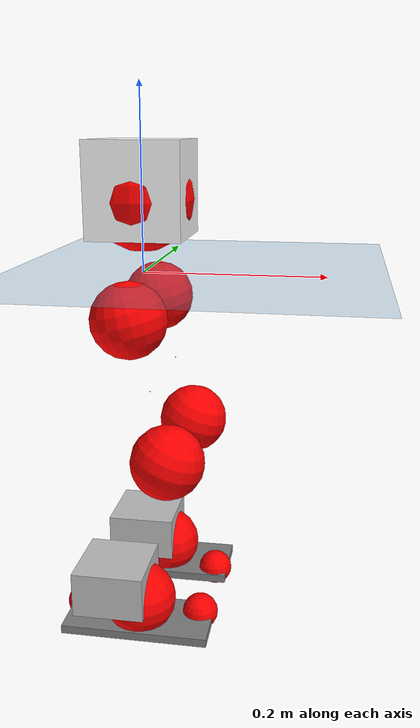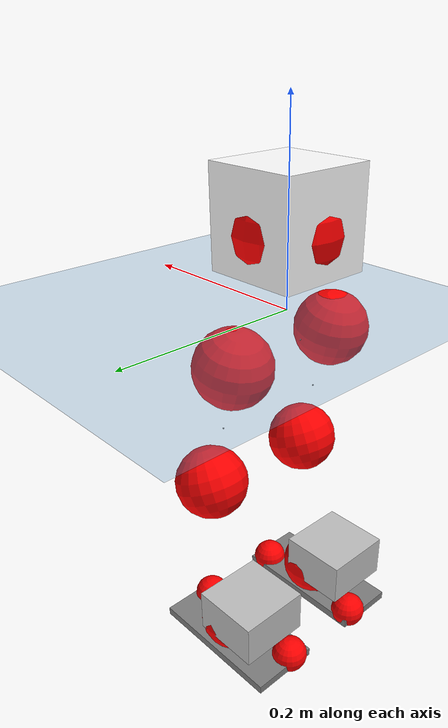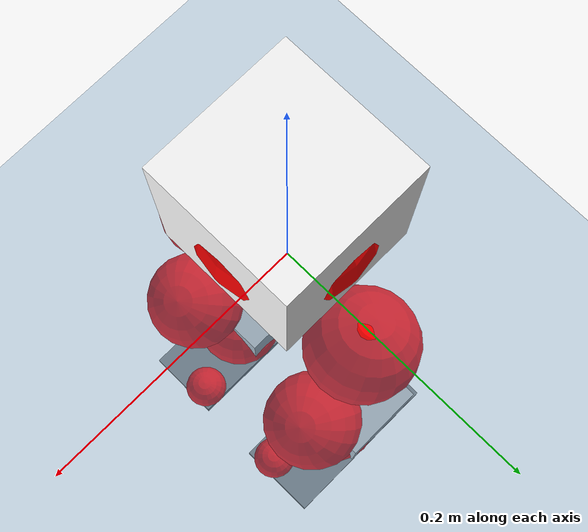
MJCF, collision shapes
<mujoco model="pi_12dof_release_v1">
  <compiler angle="radian" assetdir="assets" balanceinertia="true" inertiafromgeom="false"/>

  <option timestep="0.005" density="1.2" viscosity="2e-05"/>

  <size nkey="1"/>

  <visual>
    <quality shadowsize="8192"/>
    <map shadowclip="0.5"/>
  </visual>

  <default>
    <default class="/">
      <joint armature="0.01" damping="0.01" frictionloss="0.01"/>
      <geom contype="0" conaffinity="0" group="1" solref="-1000 -80"/>
      <site size="0.01 0.005 0.005" group="5"/>
      <general forcelimited="true" biastype="affine" gainprm="20" biasprm="0 -20 -0.5"/>
      <default class="foot">
        <geom size="0.0845 0.036 0.005" type="box" condim="6" group="4" priority="1" friction="0.9 0.2 0.2" solimp="0.015 1 0.005"/>
      </default>
      <default class="reward_collision_sphere">
        <geom group="5" rgba="1 0 0 1"/>
      </default>
    </default>
  </default>

  <asset>
    <texture type="skybox" colorspace="auto" name="//unnamed_texture_0" builtin="gradient" rgb1="0.95 0.95 0.95" rgb2="0.95 0.95 0.95" width="100" height="600"/>
    <texture type="2d" colorspace="auto" name="texplane" builtin="checker" rgb1="0.345 0.575 0.748" rgb2="0.345 0.575 0.748" markrgb="1 1 1" width="512" height="512"/>
    <material name="MatPlane" class="/" texture="texplane" texuniform="true" texrepeat="2 2" specular="0.9"/>
    <mesh name="baselink_1" class="/" file="baselink_1.STL"/>
    <mesh name="r_hip_pitch_link" class="/" file="r_hip_pitch_link.STL"/>
    <mesh name="r_hip_roll_link" class="/" file="r_hip_roll_link.STL"/>
    <mesh name="r_thigh_link" class="/" file="r_thigh_link.STL"/>
    <mesh name="r_calf_link" class="/" file="r_calf_link.STL"/>
    <mesh name="r_ankle_pitch_link" class="/" file="r_ankle_pitch_link.STL"/>
    <mesh name="r_ankle_roll_link" class="/" file="r_ankle_roll_link.STL"/>
    <mesh name="l_hip_pitch_link" class="/" file="l_hip_pitch_link.STL"/>
    <mesh name="l_hip_roll_link" class="/" file="l_hip_roll_link.STL"/>
    <mesh name="l_thigh_link" class="/" file="l_thigh_link.STL"/>
    <mesh name="l_calf_link" class="/" file="l_calf_link.STL"/>
    <mesh name="l_ankle_pitch_link" class="/" file="l_ankle_pitch_link.STL"/>
    <mesh name="l_ankle_roll_link" class="/" file="l_ankle_roll_link.STL"/>
  </asset>

  <worldbody>
    <geom name="floor" class="/" size="100 100 0.125" type="plane" group="0" material="MatPlane"/>
    <light name="toplight_shadow" class="/" pos="0 0 5" dir="0.0990148 0.0990148 -0.990148" type="directional" ambient="0.04 0.04 0.04" diffuse="0.55 0.55 0.55" specular="0.12 0.12 0.12"/>
    <light name="toplight_fill" class="/" pos="0 0 5" dir="0.0990148 0.0990148 -0.990148" type="directional" castshadow="false" ambient="0.04 0.04 0.04" diffuse="0.3 0.3 0.3" specular="0.08 0.08 0.08"/>
    <body name="trunk" pos="0.000808826 0.000190771 -0.00103562" quat="1 -0.000286688 -0.000285932 3.69744e-05">
      <inertial pos="-0.000160692 -0.0025256 0.0469579" quat="0.695973 0.00707329 0.00980644 0.717966" mass="2.36176" diaginertia="0.0110802 0.00512479 0.00807066"/>
      <joint name="//unnamed_joint_0" type="free"/>
      <geom name="//unnamed_geom_1" class="/" type="mesh" density="0" rgba="1 1 1 1" mesh="baselink_1"/>
      <geom name="//unnamed_geom_2" class="/" size="0.0509369 0.0509369 0.0509369" pos="0 0 0.0912882" type="box" rgba="1 1 1 1"/>
      <geom name="//unnamed_geom_3" class="reward_collision_sphere" size="0.0560306" pos="0 0 0.0798771"/>
      <site name="imu" class="/" pos="0.0105358 -0.000586429 -0.0104621" size="0.0101874"/>
      <camera name="track" class="/" pos="0 -1.783 0" quat="0.707107 0.707107 0 0" mode="trackcom"/>
      <camera name="ego_camera" class="/" pos="0.076771 0 0.205398" quat="-0.5 -0.5 0.5 0.5"/>
      <body name="r_hip_pitch_link" pos="-0.00095775 -0.0209215 -0.0372687" quat="0.992195 -4.7238e-05 -0.124693 -6.81293e-06">
        <inertial pos="0.000862145 -0.0512762 2.33357e-05" quat="-0.0197031 0.705974 -0.028739 0.70738" mass="0.376652" diaginertia="0.000117707 5.26036e-05 0.000155777"/>
        <joint name="r_hip_pitch_joint" class="/" pos="0 0 0" axis="-0.00418675 -0.999983 -0.00416995" stiffness="0.00219637" range="-1.73734 1.20412" armature="0.00929446" damping="0.0128865" frictionloss="0.0106483"/>
        <geom name="//unnamed_geom_4" class="/" type="mesh" density="0" rgba="0.75294 0.75294 0.75294 1" mesh="r_hip_pitch_link"/>
        <geom name="//unnamed_geom_5" class="/" size="0.000509369 0.000509369 0.000509369" type="box" rgba="0.75294 0.75294 0.75294 1"/>
        <body name="r_hip_roll_link" pos="0.000252283 -0.0474424 7.50162e-05" quat="1 -0.000307189 -0.000854609 -0.000188226">
          <inertial pos="-0.000720283 -0.000171979 -0.0705817" quat="0.703686 -0.074951 -0.0814065 0.701842" mass="0.404734" diaginertia="0.000373735 0.000150902 0.000243747"/>
          <joint name="r_hip_roll_joint" class="/" pos="0 0 0" axis="-0.999995 0.00314173 0.000880963" range="-0.113051 0.495452" armature="0.0100972" damping="0" frictionloss="0.011318"/>
          <geom name="//unnamed_geom_6" class="/" type="mesh" density="0" rgba="0.75294 0.75294 0.75294 1" mesh="r_hip_roll_link"/>
          <geom name="//unnamed_geom_7" class="/" size="0.000509369 0.000509369 0.000509369" type="box" rgba="0.75294 0.75294 0.75294 1"/>
          <geom name="//unnamed_geom_8" class="reward_collision_sphere" size="0.0407495"/>
          <body name="r_thigh_link" pos="0.00077124 0.0024931 -0.0794714" quat="1 0.000464807 -8.84083e-05 -6.67385e-05">
            <inertial pos="0.000100706 -0.000462027 -0.0535792" quat="0.737237 0.675633 0.000575568 0.0014344" mass="0.119283" diaginertia="0.000138042 5.37477e-05 0.000111617"/>
            <joint name="r_thigh_joint" class="/" pos="0 0 0" axis="-0.000257015 0.000169136 -1" range="-0.316487 0.612419" armature="0.0113908" damping="0.00754949" frictionloss="0.00990037"/>
            <geom name="//unnamed_geom_9" class="/" type="mesh" density="0" rgba="0.75294 0.75294 0.75294 1" mesh="r_thigh_link"/>
            <geom name="//unnamed_geom_10" class="/" size="0.000509369 0.000509369 0.000509369" type="box" rgba="0.75294 0.75294 0.75294 1"/>
            <body name="r_calf_link" pos="-0.00186797 -0.0037823 -0.0801996" quat="0.947652 1.85214e-05 0.319304 2.2084e-05">
              <inertial pos="-0.000780449 -0.00350312 -0.0800891" quat="0.99994 0.00179228 -0.0104518 0.00266142" mass="0.854306" diaginertia="0.00389414 0.0020208 0.000333518"/>
              <joint name="r_calf_joint" class="/" pos="0 0 0" axis="-0.000584271 -1 -4.34049e-05" range="-1.65232 0.629264" armature="0.0105554" damping="0.0144298" frictionloss="0.0104617"/>
              <geom name="//unnamed_geom_11" class="/" type="mesh" density="0" rgba="0.75294 0.75294 0.75294 1" mesh="r_calf_link"/>
              <geom name="//unnamed_geom_12" class="/" size="0.000509369 0.000509369 0.000509369" type="box" rgba="0.75294 0.75294 0.75294 1"/>
              <geom name="//unnamed_geom_13" class="reward_collision_sphere" size="0.0407495"/>
              <body name="r_ankle_pitch_link" pos="0.00076284 0.00132398 -0.16128" quat="0.980177 0.000354295 -0.198121 -0.000502133">
                <inertial pos="0.00698456 0.00388357 -4.44647e-05" quat="0.00241835 0.706838 -0.00211473 0.707368" mass="0.189364" diaginertia="0.000346142 0.000122982 0.000238737"/>
                <joint name="r_ankle_pitch_joint" class="/" pos="0 0 0" axis="0.000469805 -1 -1.08914e-05" range="-1.2623 0.508861" armature="0.0101711" damping="0" frictionloss="0.00991516"/>
                <geom name="//unnamed_geom_14" class="/" type="mesh" density="0" rgba="0.75294 0.75294 0.75294 1" mesh="r_ankle_pitch_link"/>
                <geom name="//unnamed_geom_15" class="/" size="0.0397308 0.0407495 0.0254684" type="box" rgba="0.75294 0.75294 0.75294 1"/>
                <body name="r_ankle_roll_link" pos="0.077855 0.00350924 -0.000280656" quat="1 6.54489e-05 3.50747e-05 -3.04279e-05">
                  <inertial pos="-0.0256717 0.000193058 -0.0164158" quat="0.564928 0.43656 0.426137 0.555588" mass="0.555581" diaginertia="0.00127529 0.000594955 0.000556657"/>
                  <joint name="r_ankle_roll_joint" class="/" pos="0 0 0" axis="-1 0.00024547 -0.000225121" range="-0.144223 0.144979" armature="0.011312" damping="0.00685379" frictionloss="0.00975868"/>
                  <geom name="//unnamed_geom_16" class="/" type="mesh" density="0" rgba="0.75294 0.75294 0.75294 1" mesh="r_ankle_roll_link"/>
                  <geom name="//unnamed_geom_17" class="/" type="mesh" rgba="0.75294 0.75294 0.75294 1" mesh="r_ankle_roll_link"/>
                  <geom name="right_foot" class="foot" size="0.0828529 0.0362826 0.00483782" pos="-0.0522043 0 -0.0502085"/>
                  <geom name="//unnamed_geom_19" class="reward_collision_sphere" size="0.0407495" pos="-0.0511807 0 -0.022822"/>
                  <geom name="//unnamed_geom_20" class="reward_collision_sphere" size="0.0203748" pos="0.0153542 0.01783 -0.0456441"/>
                  <geom name="//unnamed_geom_21" class="reward_collision_sphere" size="0.0203748" pos="-0.122834 0.01783 -0.0456441"/>
                  <site name="right_foot" class="foot" pos="-0.0522043 0 -0.0502085" size="0.0101874"/>
                </body>
              </body>
            </body>
          </body>
        </body>
      </body>
      <body name="l_hip_pitch_link" pos="0.00145063 0.0203386 -0.0392436" quat="0.992196 -2.13135e-05 -0.124688 -1.38482e-05">
        <inertial pos="0.00062587 0.0482417 -0.00251164" quat="-0.0401241 0.702085 0.0333362 0.71018" mass="0.423129" diaginertia="0.000152849 6.12366e-05 0.000201202"/>
        <joint name="l_hip_pitch_joint" class="/" pos="0 0 0" axis="-0.00144702 0.999998 -0.00163589" range="-1.25394 1.75216" armature="0.0102606" damping="0.0109045" frictionloss="0.00998163"/>
        <geom name="//unnamed_geom_22" class="/" type="mesh" density="0" rgba="0.75294 0.75294 0.75294 1" mesh="l_hip_pitch_link"/>
        <geom name="//unnamed_geom_23" class="/" size="0.000509369 0.000509369 0.000509369" type="box" rgba="0.75294 0.75294 0.75294 1"/>
        <body name="l_hip_roll_link" pos="-0.00146795 0.0509337 5.00326e-05" quat="1 -0.000421119 -0.000191094 -0.000158944">
          <inertial pos="-0.00404906 -0.00109795 -0.0719065" quat="0.699074 -0.0761241 -0.0791053 0.706572" mass="0.412331" diaginertia="0.000360293 0.000156274 0.000243516"/>
          <joint name="l_hip_roll_joint" class="/" pos="0 0 0" axis="-0.99999 0.0044146 0.00113859" range="-0.520914 0.131601" armature="0.0106061" damping="0.0111134" frictionloss="0.010301"/>
          <geom name="//unnamed_geom_24" class="/" type="mesh" density="0" rgba="0.75294 0.75294 0.75294 1" mesh="l_hip_roll_link"/>
          <geom name="//unnamed_geom_25" class="/" size="0.000509369 0.000509369 0.000509369" type="box" rgba="0.75294 0.75294 0.75294 1"/>
          <geom name="//unnamed_geom_26" class="reward_collision_sphere" size="0.0407495"/>
          <body name="l_thigh_link" pos="6.88957e-05 -0.00134294 -0.0780506" quat="1 3.37113e-05 7.60187e-05 -3.26444e-05">
            <inertial pos="-0.000236582 9.40245e-05 -0.0530887" quat="0.675679 0.737196 9.43482e-05 -0.000586004" mass="0.123111" diaginertia="0.000143994 5.6137e-05 0.000114105"/>
            <joint name="l_thigh_joint" class="/" pos="0 0 0" axis="-0.000233672 -0.000211004 -1" range="-0.645091 0.296309" armature="0.00967035" damping="0.00415874" frictionloss="0.0100162"/>
            <geom name="//unnamed_geom_27" class="/" type="mesh" density="0" rgba="0.75294 0.75294 0.75294 1" mesh="l_thigh_link"/>
            <geom name="//unnamed_geom_28" class="/" size="0.000509369 0.000509369 0.000509369" type="box" rgba="0.75294 0.75294 0.75294 1"/>
            <body name="l_calf_link" pos="0.00175257 0.00090164 -0.0805478" quat="0.947636 -0.000181851 0.319353 6.46593e-05">
              <inertial pos="0.000544351 0.002206 -0.0821732" quat="0.999912 0.00233529 0.0123722 0.00409663" mass="0.849227" diaginertia="0.00384144 0.00190255 0.000327764"/>
              <joint name="l_calf_joint" class="/" pos="0 0 0" axis="0.00301323 0.999981 0.0053486" range="-0.648189 1.63165" armature="0.010283" damping="0" frictionloss="0.00966766"/>
              <geom name="//unnamed_geom_29" class="/" type="mesh" density="0" rgba="0.75294 0.75294 0.75294 1" mesh="l_calf_link"/>
              <geom name="//unnamed_geom_30" class="/" size="0.000509369 0.000509369 0.000509369" type="box" rgba="0.75294 0.75294 0.75294 1"/>
              <geom name="//unnamed_geom_31" class="reward_collision_sphere" size="0.0407495"/>
              <body name="l_ankle_pitch_link" pos="0.00260602 -0.00045689 -0.161951" quat="0.97992 2.98321e-05 -0.199391 6.89062e-05">
                <inertial pos="0.00488151 -0.00109364 -0.000331177" quat="-0.00293805 0.70694 0.00211103 0.707264" mass="0.183418" diaginertia="0.00034073 0.000123801 0.000230399"/>
                <joint name="l_ankle_pitch_joint" class="/" pos="0 0 0" axis="0.000862733 1 -2.1233e-05" stiffness="0.000173671" range="-0.498675 1.29857" armature="0.0100472" damping="0.0098763" frictionloss="0.00972368"/>
                <geom name="//unnamed_geom_32" class="/" type="mesh" density="0" rgba="0.75294 0.75294 0.75294 1" mesh="l_ankle_pitch_link"/>
                <geom name="//unnamed_geom_33" class="/" size="0.0397308 0.0407495 0.0254684" type="box" rgba="0.75294 0.75294 0.75294 1"/>
                <body name="l_ankle_roll_link" pos="0.0758138 0.00154612 0.000353744" quat="0.999999 -0.000687564 -0.000766851 0.000134498">
                  <inertial pos="-0.0239709 4.57375e-05 -0.0169852" quat="0.555536 0.43169 0.436398 0.560874" mass="0.558523" diaginertia="0.00128546 0.000581189 0.000553529"/>
                  <joint name="l_ankle_roll_joint" class="/" pos="0 0 0" axis="-0.999998 0.00182178 0.000432907" range="-0.121112 0.142792" armature="0.0108938" damping="0.0199396" frictionloss="0.00978026"/>
                  <geom name="//unnamed_geom_34" class="/" type="mesh" density="0" rgba="0.75294 0.75294 0.75294 1" mesh="l_ankle_roll_link"/>
                  <geom name="//unnamed_geom_35" class="/" type="mesh" rgba="0.75294 0.75294 0.75294 1" mesh="l_ankle_roll_link"/>
                  <geom name="left_foot" class="foot" size="0.0823085 0.039333 0.00486499" pos="-0.0522043 0 -0.0502085"/>
                  <geom name="//unnamed_geom_37" class="reward_collision_sphere" size="0.0407495" pos="-0.0511807 0 -0.022822"/>
                  <geom name="//unnamed_geom_38" class="reward_collision_sphere" size="0.0203748" pos="0.0153542 -0.01783 -0.0456441"/>
                  <geom name="//unnamed_geom_39" class="reward_collision_sphere" size="0.0203748" pos="-0.122834 -0.01783 -0.0456441"/>
                  <site name="left_foot" class="foot" pos="-0.0522043 0 -0.0502085" size="0.0101874"/>
                </body>
              </body>
            </body>
          </body>
        </body>
      </body>
    </body>
  </worldbody>

  <contact>
    <pair class="/" geom1="floor" geom2="right_foot" name="//unnamed_contact_1"/>
    <pair class="/" geom1="floor" geom2="left_foot" name="//unnamed_contact_0"/>
  </contact>

  <actuator>
    <general name="r_hip_pitch_joint" class="/" joint="r_hip_pitch_joint" forcerange="-22.4491 22.4491" gainprm="19.1688" biasprm="0 -19.1688 -0.519775"/>
    <general name="r_hip_roll_joint" class="/" joint="r_hip_roll_joint" forcerange="-21.5606 21.5606" gainprm="19.1688" biasprm="0 -19.1688 -0.519775"/>
    <general name="r_thigh_joint" class="/" joint="r_thigh_joint" forcerange="-21.8928 21.8928" gainprm="19.1688" biasprm="0 -19.1688 -0.519775"/>
    <general name="r_calf_joint" class="/" joint="r_calf_joint" forcerange="-22.9918 22.9918" gainprm="19.1688" biasprm="0 -19.1688 -0.519775"/>
    <general name="r_ankle_pitch_joint" class="/" joint="r_ankle_pitch_joint" forcerange="-21.3767 21.3767" gainprm="19.1688" biasprm="0 -19.1688 -0.519775"/>
    <general name="r_ankle_roll_joint" class="/" joint="r_ankle_roll_joint" forcerange="-21.0008 21.0008" gainprm="19.1688" biasprm="0 -19.1688 -0.519775"/>
    <general name="l_hip_pitch_joint" class="/" joint="l_hip_pitch_joint" forcerange="-20.5699 20.5699" gainprm="19.1688" biasprm="0 -19.1688 -0.519775"/>
    <general name="l_hip_roll_joint" class="/" joint="l_hip_roll_joint" forcerange="-19.6153 19.6153" gainprm="19.1688" biasprm="0 -19.1688 -0.519775"/>
    <general name="l_thigh_joint" class="/" joint="l_thigh_joint" forcerange="-22.2377 22.2377" gainprm="19.1688" biasprm="0 -19.1688 -0.519775"/>
    <general name="l_calf_joint" class="/" joint="l_calf_joint" forcerange="-21.2185 21.2185" gainprm="19.1688" biasprm="0 -19.1688 -0.519775"/>
    <general name="l_ankle_pitch_joint" class="/" joint="l_ankle_pitch_joint" forcerange="-21.8883 21.8883" gainprm="19.1688" biasprm="0 -19.1688 -0.519775"/>
    <general name="l_ankle_roll_joint" class="/" joint="l_ankle_roll_joint" forcerange="-21.7624 21.7624" gainprm="19.1688" biasprm="0 -19.1688 -0.519775"/>
  </actuator>

  <sensor>
    <gyro site="imu" name="imu_angular_velocity"/>
    <velocimeter site="imu" name="imu_linear_velocity"/>
    <framelinvel objtype="site" objname="left_foot" name="left_foot_global_linear_velocity"/>
    <framelinvel objtype="site" objname="right_foot" name="right_foot_global_linear_velocity"/>
  </sensor>

  <keyframe>
    <key name="home" qpos="0 0 0.291 1 0 0 0 0.4 0 0 -0.8 0.4 0 -0.4 0 0 0.8 -0.4 0"/>
  </keyframe>
</mujoco>
